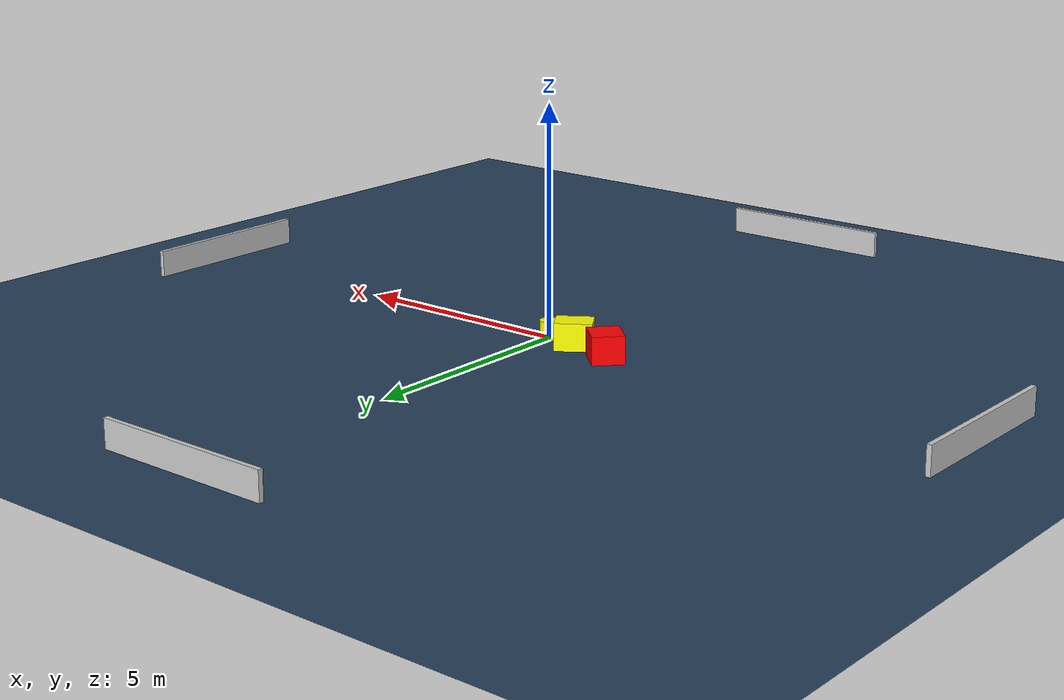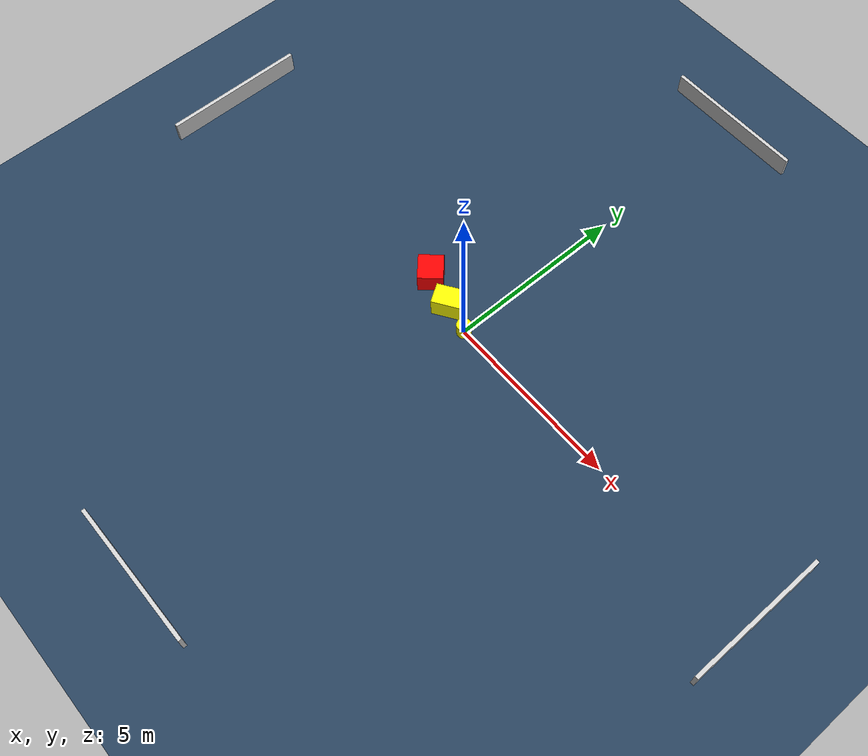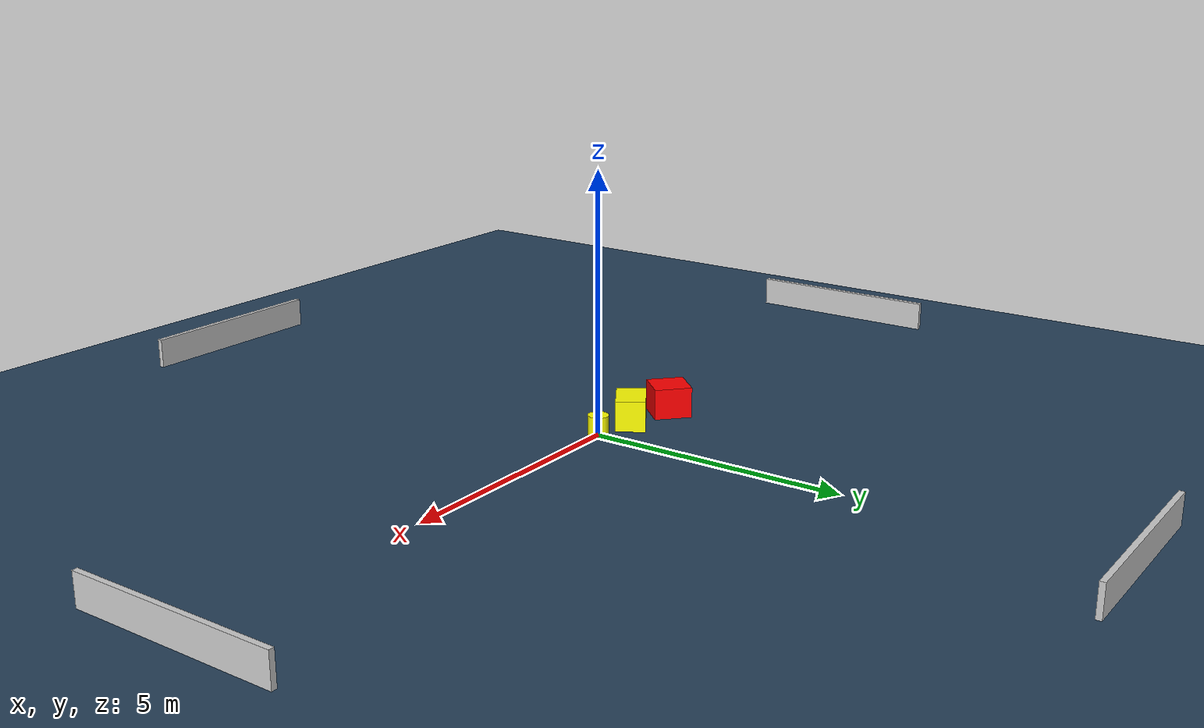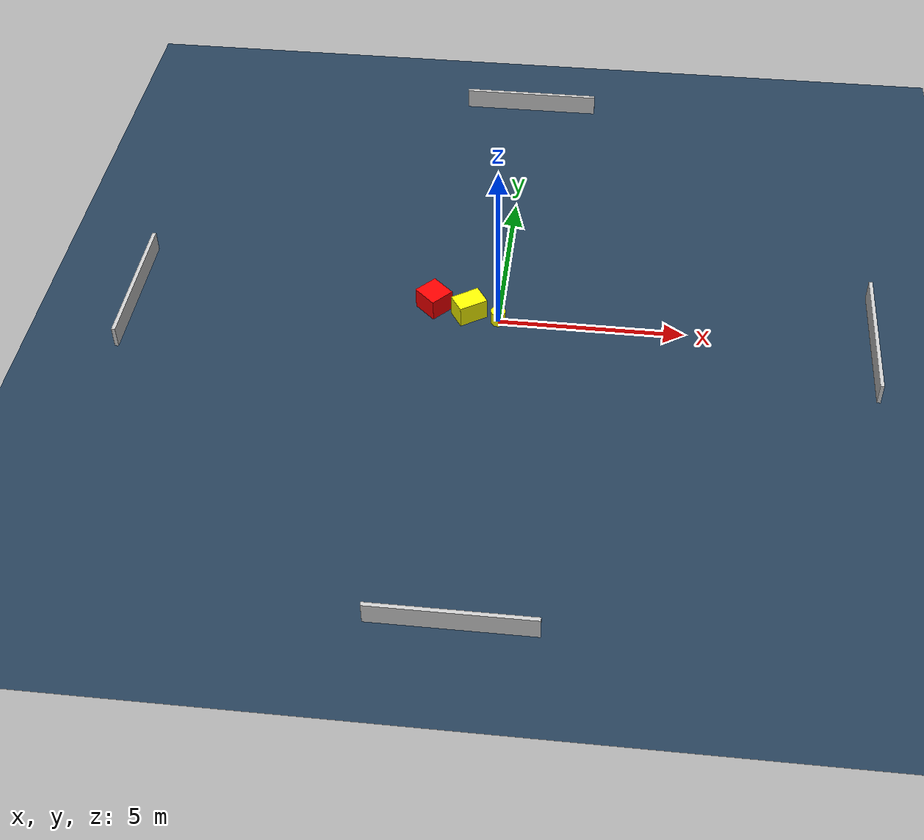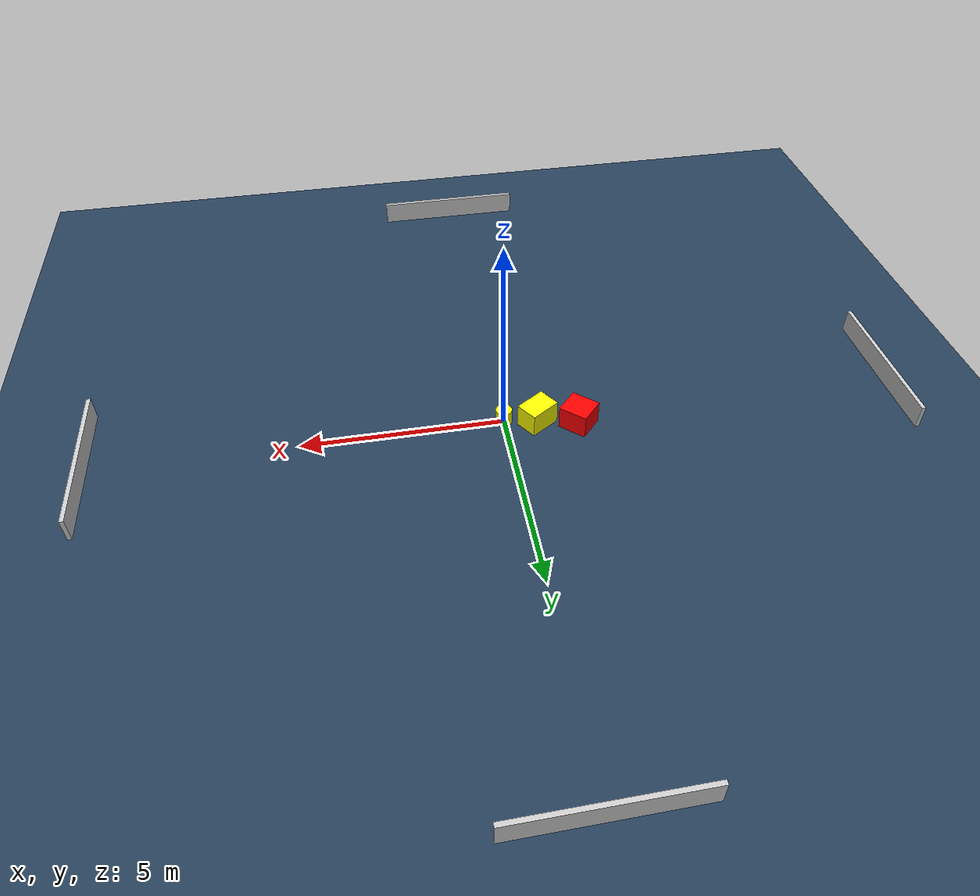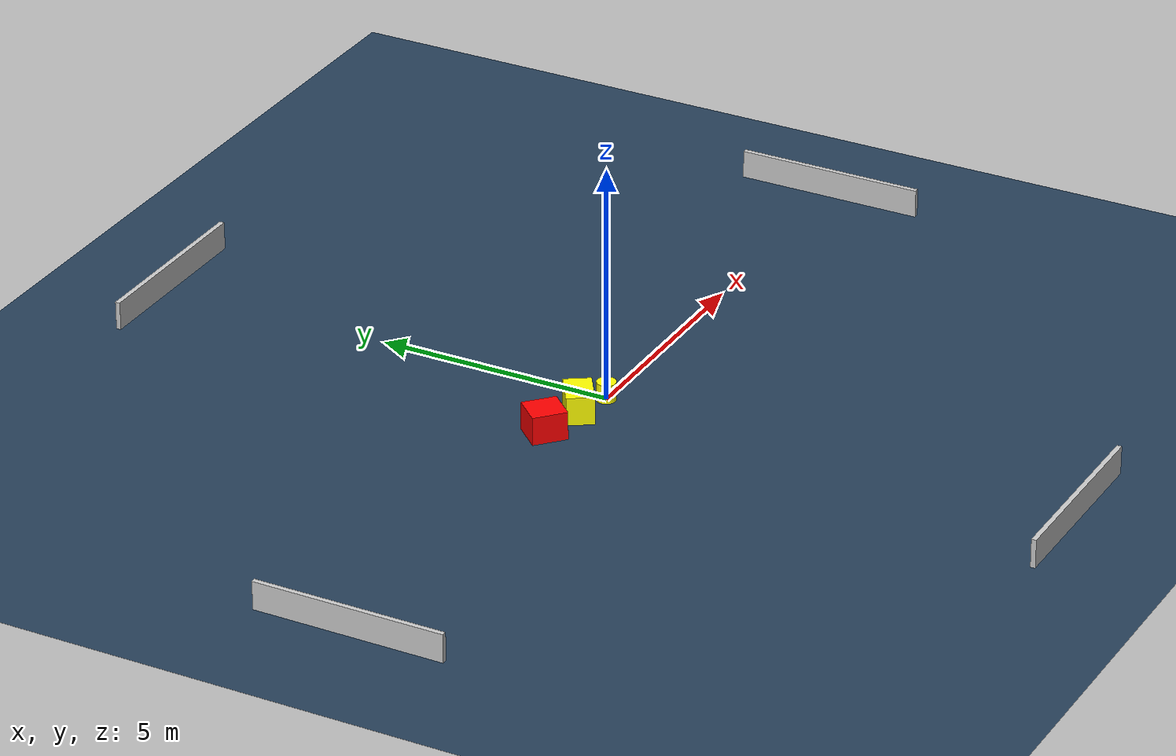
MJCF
<?xml version="1.0" ?>
<mujoco model="generated_environment">
  <option timestep="0.01" integrator="RK4" cone="elliptic"/>
  <default>
    <geom density="1"/>
  </default>
  <asset>
    <texture builtin="gradient" height="3072" name="skybox" rgb1="0.3 0.5 0.7" rgb2="0 0 0" type="skybox" width="512"/>
    <texture builtin="checker" height="300" name="groundplane" rgb1="0.2 0.3 0.4" rgb2="0.1 0.2 0.3" type="2d" width="300"/>
    <material name="groundplane" reflectance="0.2" texrepeat="5 5" texture="groundplane"/>
  </asset>
  <worldbody>
    <light dir="0 0 -1" directional="true" pos="0 0 1.5"/>
    <geom condim="3" friction="0.5 0.005 0.001" material="groundplane" name="floor" pos="0 0 0" size="0 0 0.05" type="plane"/>
    <body name="walls">
      <geom name="wall_1" condim="4" pos="-10.0 0.0 0.3" rgba="0.800000011920929 0.800000011920929 0.800000011920929 1.0" size="0.05 2.0 0.3" type="box"/>
      <geom name="wall_2" condim="4" pos="10.0 0.0 0.3" rgba="0.800000011920929 0.800000011920929 0.800000011920929 1.0" size="0.05 2.0 0.3" type="box"/>
      <geom name="wall_3" condim="4" pos="0.0 -10.0 0.3" rgba="0.800000011920929 0.800000011920929 0.800000011920929 1.0" size="2.0 0.05 0.3" type="box"/>
      <geom name="wall_4" condim="4" pos="0.0 10.0 0.3" rgba="0.800000011920929 0.800000011920929 0.800000011920929 1.0" size="2.0 0.05 0.3" type="box"/>
    </body>
    <body name="robot">
      <joint name="joint_x" type="slide" pos="0 0 0" axis="1 0 0"/>
      <joint name="joint_y" type="slide" pos="0 0 0" axis="0 1 0"/>
      <geom name="robot" type="cylinder" pos="0.0 0.0 0.2" size="0.2 0.2 0.0" mass="5.0" friction="1.0 0.005 0.0001" condim="4" rgba="1.0 1.0 0.0 1.0"/>
    </body>
    <body name="obstacle_1_movable">
      <geom name="obstacle_1_movable" condim="4" pos="-0.8097587203713917 0.17827458198742394 0.3" euler="0 0 32.959243808487656" friction="0.0 0.005 0.001" rgba="1.0 1.0 0.0 1.0" size="0.4005156167394426 0.28554460241850155 0.3" type="box" mass="0.1"/>
      <joint type="free"/>
    </body>
    <body name="obstacle_2_static">
      <geom name="obstacle_2_static" condim="4" pos="-1.7961292897880003 0.40324582790417673 0.3" euler="0 0 47.51490786710322" friction="0.0 0.005 0.001" rgba="1.0 0.0 0.0 1.0" size="0.3427337906329734 0.36475791822573833 0.3" type="box"/>
    </body>
  </worldbody>
  <actuator>
    <motor name="actuator_x" joint="joint_x" gear="1" ctrlrange="-1 1"/>
    <motor name="actuator_y" joint="joint_y" gear="1" ctrlrange="-1 1"/>
  </actuator>
</mujoco>
